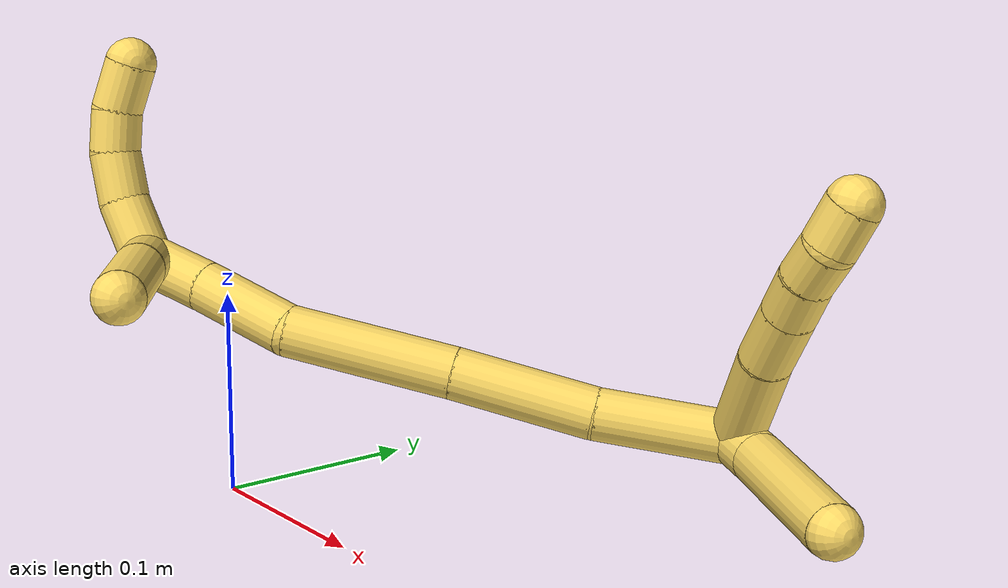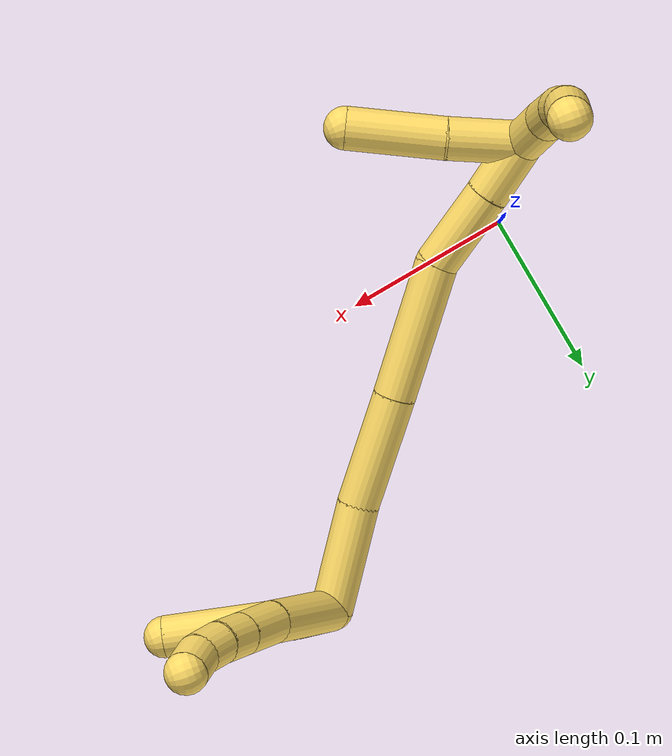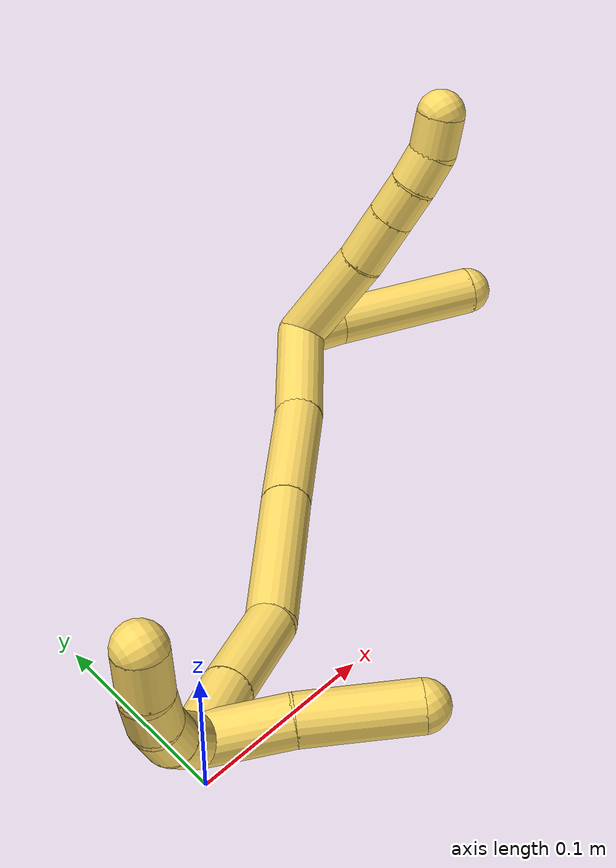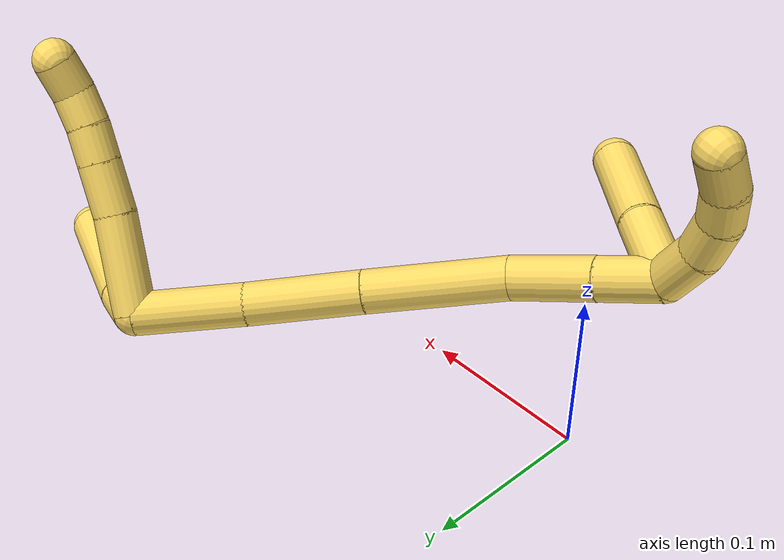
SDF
<sdf version="1.7">
 <world name="default">
  <model name="5">
   <static>0</static>
   <link name="5">
    <collision name="collision-cylinder-e_1_2_8">
     <pose>-0.012762 -0.018462 0.017936 0.799845 -0.4603 -0.197435</pose>
     <geometry><cylinder><radius>0.0125</radius><length>0.05746</length></cylinder></geometry>
     <surface>
      <friction><ode><mu>1.16</mu><mu2>1.16</mu2><slip1>0</slip1><slip2>0</slip2></ode></friction>
      <contact><ode><kp>1e+06</kp><kd>1</kd><max_vel>0</max_vel><min_depth>0.001</min_depth></ode></contact>
     </surface>
    </collision>
    <visual name="visual-cylinder-e_1_2_8">
     <pose>-0.012762 -0.018462 0.017936 0.799845 -0.4603 -0.197435</pose>
     <geometry><cylinder><radius>0.0125</radius><length>0.05746</length></cylinder></geometry>
     <material><ambient>1 0.858824 0.4 1</ambient></material>
    </visual>
    <collision name="collision-cylinder-e_2_8_9">
     <pose>-0.033461 -0.04567 0.045439 0.74061 -0.549374 -0.217939</pose>
     <geometry><cylinder><radius>0.0125</radius><length>0.030399</length></cylinder></geometry>
     <surface>
      <friction><ode><mu>1.16</mu><mu2>1.16</mu2><slip1>0</slip1><slip2>0</slip2></ode></friction>
      <contact><ode><kp>1e+06</kp><kd>1</kd><max_vel>0</max_vel><min_depth>0.001</min_depth></ode></contact>
     </surface>
    </collision>
    <visual name="visual-cylinder-e_2_8_9">
     <pose>-0.033461 -0.04567 0.045439 0.74061 -0.549374 -0.217939</pose>
     <geometry><cylinder><radius>0.0125</radius><length>0.030399</length></cylinder></geometry>
     <material><ambient>1 0.858824 0.4 1</ambient></material>
    </visual>
    <collision name="collision-cylinder-e_3_9_10">
     <pose>-0.046985 -0.060558 0.061731 0.740158 -0.550357 -0.218201</pose>
     <geometry><cylinder><radius>0.0125</radius><length>0.021369</length></cylinder></geometry>
     <surface>
      <friction><ode><mu>1.16</mu><mu2>1.16</mu2><slip1>0</slip1><slip2>0</slip2></ode></friction>
      <contact><ode><kp>1e+06</kp><kd>1</kd><max_vel>0</max_vel><min_depth>0.001</min_depth></ode></contact>
     </surface>
    </collision>
    <visual name="visual-cylinder-e_3_9_10">
     <pose>-0.046985 -0.060558 0.061731 0.740158 -0.550357 -0.218201</pose>
     <geometry><cylinder><radius>0.0125</radius><length>0.021369</length></cylinder></geometry>
     <material><ambient>1 0.858824 0.4 1</ambient></material>
    </visual>
    <collision name="collision-cylinder-e_4_10_11">
     <pose>-0.058294 -0.071496 0.075112 0.624315 -0.608872 -0.202101</pose>
     <geometry><cylinder><radius>0.0125</radius><length>0.020006</length></cylinder></geometry>
     <surface>
      <friction><ode><mu>1.16</mu><mu2>1.16</mu2><slip1>0</slip1><slip2>0</slip2></ode></friction>
      <contact><ode><kp>1e+06</kp><kd>1</kd><max_vel>0</max_vel><min_depth>0.001</min_depth></ode></contact>
     </surface>
    </collision>
    <visual name="visual-cylinder-e_4_10_11">
     <pose>-0.058294 -0.071496 0.075112 0.624315 -0.608872 -0.202101</pose>
     <geometry><cylinder><radius>0.0125</radius><length>0.020006</length></cylinder></geometry>
     <material><ambient>1 0.858824 0.4 1</ambient></material>
    </visual>
    <collision name="collision-cylinder-e_5_11_6">
     <pose>-0.072266 -0.080568 0.086402 0.745249 -0.91838 -0.381832</pose>
     <geometry><cylinder><radius>0.0125</radius><length>0.020767</length></cylinder></geometry>
     <surface>
      <friction><ode><mu>1.16</mu><mu2>1.16</mu2><slip1>0</slip1><slip2>0</slip2></ode></friction>
      <contact><ode><kp>1e+06</kp><kd>1</kd><max_vel>0</max_vel><min_depth>0.001</min_depth></ode></contact>
     </surface>
    </collision>
    <visual name="visual-cylinder-e_5_11_6">
     <pose>-0.072266 -0.080568 0.086402 0.745249 -0.91838 -0.381832</pose>
     <geometry><cylinder><radius>0.0125</radius><length>0.020767</length></cylinder></geometry>
     <material><ambient>1 0.858824 0.4 1</ambient></material>
    </visual>
    <collision name="collision-cylinder-e_1_2_12">
     <pose>0.002546 0.000622 0.010959 -0.056657 0.227947 -0.006487</pose>
     <geometry><cylinder><radius>0.0125</radius><length>0.022535</length></cylinder></geometry>
     <surface>
      <friction><ode><mu>1.16</mu><mu2>1.16</mu2><slip1>0</slip1><slip2>0</slip2></ode></friction>
      <contact><ode><kp>1e+06</kp><kd>1</kd><max_vel>0</max_vel><min_depth>0.001</min_depth></ode></contact>
     </surface>
    </collision>
    <visual name="visual-cylinder-e_1_2_12">
     <pose>0.002546 0.000622 0.010959 -0.056657 0.227947 -0.006487</pose>
     <geometry><cylinder><radius>0.0125</radius><length>0.022535</length></cylinder></geometry>
     <material><ambient>1 0.858824 0.4 1</ambient></material>
    </visual>
    <collision name="collision-cylinder-e_2_12_5">
     <pose>0.014998 -0.000633 0.059314 0.050117 0.258611 0.006518</pose>
     <geometry><cylinder><radius>0.0125</radius><length>0.077465</length></cylinder></geometry>
     <surface>
      <friction><ode><mu>1.16</mu><mu2>1.16</mu2><slip1>0</slip1><slip2>0</slip2></ode></friction>
      <contact><ode><kp>1e+06</kp><kd>1</kd><max_vel>0</max_vel><min_depth>0.001</min_depth></ode></contact>
     </surface>
    </collision>
    <visual name="visual-cylinder-e_2_12_5">
     <pose>0.014998 -0.000633 0.059314 0.050117 0.258611 0.006518</pose>
     <geometry><cylinder><radius>0.0125</radius><length>0.077465</length></cylinder></geometry>
     <material><ambient>1 0.858824 0.4 1</ambient></material>
    </visual>
    <collision name="collision-cylinder-e_1_2_13">
     <pose>0.014317 -0.023039 -0.017848 2.22991 0.456625 0.885165</pose>
     <geometry><cylinder><radius>0.0125</radius><length>0.064939</length></cylinder></geometry>
     <surface>
      <friction><ode><mu>1.16</mu><mu2>1.16</mu2><slip1>0</slip1><slip2>0</slip2></ode></friction>
      <contact><ode><kp>1e+06</kp><kd>1</kd><max_vel>0</max_vel><min_depth>0.001</min_depth></ode></contact>
     </surface>
    </collision>
    <visual name="visual-cylinder-e_1_2_13">
     <pose>0.014317 -0.023039 -0.017848 2.22991 0.456625 0.885165</pose>
     <geometry><cylinder><radius>0.0125</radius><length>0.064939</length></cylinder></geometry>
     <material><ambient>1 0.858824 0.4 1</ambient></material>
    </visual>
    <collision name="collision-cylinder-e_2_13_14">
     <pose>0.04006 -0.070894 -0.055868 2.25334 0.343167 0.698497</pose>
     <geometry><cylinder><radius>0.0125</radius><length>0.067923</length></cylinder></geometry>
     <surface>
      <friction><ode><mu>1.16</mu><mu2>1.16</mu2><slip1>0</slip1><slip2>0</slip2></ode></friction>
      <contact><ode><kp>1e+06</kp><kd>1</kd><max_vel>0</max_vel><min_depth>0.001</min_depth></ode></contact>
     </surface>
    </collision>
    <visual name="visual-cylinder-e_2_13_14">
     <pose>0.04006 -0.070894 -0.055868 2.25334 0.343167 0.698497</pose>
     <geometry><cylinder><radius>0.0125</radius><length>0.067923</length></cylinder></geometry>
     <material><ambient>1 0.858824 0.4 1</ambient></material>
    </visual>
    <collision name="collision-cylinder-e_3_14_15">
     <pose>0.066308 -0.125134 -0.100033 2.25487 0.372183 0.754879</pose>
     <geometry><cylinder><radius>0.0125</radius><length>0.081512</length></cylinder></geometry>
     <surface>
      <friction><ode><mu>1.16</mu><mu2>1.16</mu2><slip1>0</slip1><slip2>0</slip2></ode></friction>
      <contact><ode><kp>1e+06</kp><kd>1</kd><max_vel>0</max_vel><min_depth>0.001</min_depth></ode></contact>
     </surface>
    </collision>
    <visual name="visual-cylinder-e_3_14_15">
     <pose>0.066308 -0.125134 -0.100033 2.25487 0.372183 0.754879</pose>
     <geometry><cylinder><radius>0.0125</radius><length>0.081512</length></cylinder></geometry>
     <material><ambient>1 0.858824 0.4 1</ambient></material>
    </visual>
    <collision name="collision-cylinder-e_4_15_16">
     <pose>0.08362 -0.170233 -0.143177 2.45568 0.100324 0.279371</pose>
     <geometry><cylinder><radius>0.0125</radius><length>0.049748</length></cylinder></geometry>
     <surface>
      <friction><ode><mu>1.16</mu><mu2>1.16</mu2><slip1>0</slip1><slip2>0</slip2></ode></friction>
      <contact><ode><kp>1e+06</kp><kd>1</kd><max_vel>0</max_vel><min_depth>0.001</min_depth></ode></contact>
     </surface>
    </collision>
    <visual name="visual-cylinder-e_4_15_16">
     <pose>0.08362 -0.170233 -0.143177 2.45568 0.100324 0.279371</pose>
     <geometry><cylinder><radius>0.0125</radius><length>0.049748</length></cylinder></geometry>
     <material><ambient>1 0.858824 0.4 1</ambient></material>
    </visual>
    <collision name="collision-cylinder-e_5_16_1">
     <pose>0.088621 -0.197321 -0.175941 2.44386 0.140343 0.381757</pose>
     <geometry><cylinder><radius>0.0125</radius><length>0.035878</length></cylinder></geometry>
     <surface>
      <friction><ode><mu>1.16</mu><mu2>1.16</mu2><slip1>0</slip1><slip2>0</slip2></ode></friction>
      <contact><ode><kp>1e+06</kp><kd>1</kd><max_vel>0</max_vel><min_depth>0.001</min_depth></ode></contact>
     </surface>
    </collision>
    <visual name="visual-cylinder-e_5_16_1">
     <pose>0.088621 -0.197321 -0.175941 2.44386 0.140343 0.381757</pose>
     <geometry><cylinder><radius>0.0125</radius><length>0.035878</length></cylinder></geometry>
     <material><ambient>1 0.858824 0.4 1</ambient></material>
    </visual>
    <collision name="collision-cylinder-e_1_1_17">
     <pose>0.09655 -0.21534 -0.169695 0.321221 0.253381 0.041264</pose>
     <geometry><cylinder><radius>0.0125</radius><length>0.043236</length></cylinder></geometry>
     <surface>
      <friction><ode><mu>1.16</mu><mu2>1.16</mu2><slip1>0</slip1><slip2>0</slip2></ode></friction>
      <contact><ode><kp>1e+06</kp><kd>1</kd><max_vel>0</max_vel><min_depth>0.001</min_depth></ode></contact>
     </surface>
    </collision>
    <visual name="visual-cylinder-e_1_1_17">
     <pose>0.09655 -0.21534 -0.169695 0.321221 0.253381 0.041264</pose>
     <geometry><cylinder><radius>0.0125</radius><length>0.043236</length></cylinder></geometry>
     <material><ambient>1 0.858824 0.4 1</ambient></material>
    </visual>
    <collision name="collision-cylinder-e_2_17_4">
     <pose>0.112011 -0.229794 -0.124478 0.300062 0.361674 0.055263</pose>
     <geometry><cylinder><radius>0.0125</radius><length>0.056764</length></cylinder></geometry>
     <surface>
      <friction><ode><mu>1.16</mu><mu2>1.16</mu2><slip1>0</slip1><slip2>0</slip2></ode></friction>
      <contact><ode><kp>1e+06</kp><kd>1</kd><max_vel>0</max_vel><min_depth>0.001</min_depth></ode></contact>
     </surface>
    </collision>
    <visual name="visual-cylinder-e_2_17_4">
     <pose>0.112011 -0.229794 -0.124478 0.300062 0.361674 0.055263</pose>
     <geometry><cylinder><radius>0.0125</radius><length>0.056764</length></cylinder></geometry>
     <material><ambient>1 0.858824 0.4 1</ambient></material>
    </visual>
    <collision name="collision-cylinder-e_1_1_18">
     <pose>0.083505 -0.2202 -0.196098 2.08948 -0.523737 -0.864926</pose>
     <geometry><cylinder><radius>0.0125</radius><length>0.030495</length></cylinder></geometry>
     <surface>
      <friction><ode><mu>1.16</mu><mu2>1.16</mu2><slip1>0</slip1><slip2>0</slip2></ode></friction>
      <contact><ode><kp>1e+06</kp><kd>1</kd><max_vel>0</max_vel><min_depth>0.001</min_depth></ode></contact>
     </surface>
    </collision>
    <visual name="visual-cylinder-e_1_1_18">
     <pose>0.083505 -0.2202 -0.196098 2.08948 -0.523737 -0.864926</pose>
     <geometry><cylinder><radius>0.0125</radius><length>0.030495</length></cylinder></geometry>
     <material><ambient>1 0.858824 0.4 1</ambient></material>
    </visual>
    <collision name="collision-cylinder-e_2_18_19">
     <pose>0.067836 -0.240698 -0.205292 1.85608 -0.707149 -0.915867</pose>
     <geometry><cylinder><radius>0.0125</radius><length>0.024759</length></cylinder></geometry>
     <surface>
      <friction><ode><mu>1.16</mu><mu2>1.16</mu2><slip1>0</slip1><slip2>0</slip2></ode></friction>
      <contact><ode><kp>1e+06</kp><kd>1</kd><max_vel>0</max_vel><min_depth>0.001</min_depth></ode></contact>
     </surface>
    </collision>
    <visual name="visual-cylinder-e_2_18_19">
     <pose>0.067836 -0.240698 -0.205292 1.85608 -0.707149 -0.915867</pose>
     <geometry><cylinder><radius>0.0125</radius><length>0.024759</length></cylinder></geometry>
     <material><ambient>1 0.858824 0.4 1</ambient></material>
    </visual>
    <collision name="collision-cylinder-e_3_19_20">
     <pose>0.051622 -0.2561 -0.207924 1.56818 -0.908557 -0.906494</pose>
     <geometry><cylinder><radius>0.0125</radius><length>0.020724</length></cylinder></geometry>
     <surface>
      <friction><ode><mu>1.16</mu><mu2>1.16</mu2><slip1>0</slip1><slip2>0</slip2></ode></friction>
      <contact><ode><kp>1e+06</kp><kd>1</kd><max_vel>0</max_vel><min_depth>0.001</min_depth></ode></contact>
     </surface>
    </collision>
    <visual name="visual-cylinder-e_3_19_20">
     <pose>0.051622 -0.2561 -0.207924 1.56818 -0.908557 -0.906494</pose>
     <geometry><cylinder><radius>0.0125</radius><length>0.020724</length></cylinder></geometry>
     <material><ambient>1 0.858824 0.4 1</ambient></material>
    </visual>
    <collision name="collision-cylinder-e_4_20_3">
     <pose>0.032926 -0.267837 -0.205738 1.18669 -1.06809 -0.758979</pose>
     <geometry><cylinder><radius>0.0125</radius><length>0.024022</length></cylinder></geometry>
     <surface>
      <friction><ode><mu>1.16</mu><mu2>1.16</mu2><slip1>0</slip1><slip2>0</slip2></ode></friction>
      <contact><ode><kp>1e+06</kp><kd>1</kd><max_vel>0</max_vel><min_depth>0.001</min_depth></ode></contact>
     </surface>
    </collision>
    <visual name="visual-cylinder-e_4_20_3">
     <pose>0.032926 -0.267837 -0.205738 1.18669 -1.06809 -0.758979</pose>
     <geometry><cylinder><radius>0.0125</radius><length>0.024022</length></cylinder></geometry>
     <material><ambient>1 0.858824 0.4 1</ambient></material>
    </visual>
    <collision name="collision-sphere-3">
     <pose>0.022401 -0.273202 -0.20357 0 -0 0</pose>
     <geometry><sphere><radius>0.0125</radius></sphere></geometry>
     <surface>
      <friction><ode><mu>1.16</mu><mu2>1.16</mu2><slip1>0</slip1><slip2>0</slip2></ode></friction>
      <contact><ode><kp>1e+06</kp><kd>1</kd><max_vel>0</max_vel><min_depth>0.001</min_depth></ode></contact>
     </surface>
    </collision>
    <visual name="visual-sphere-3">
     <pose>0.022401 -0.273202 -0.20357 0 -0 0</pose>
     <geometry><sphere><radius>0.0125</radius></sphere></geometry>
     <material><ambient>1 0.858824 0.4 1</ambient></material>
    </visual>
    <collision name="collision-sphere-20">
     <pose>0.043451 -0.262471 -0.207907 0 -0 0</pose>
     <geometry><sphere><radius>0.0125</radius></sphere></geometry>
     <surface>
      <friction><ode><mu>1.16</mu><mu2>1.16</mu2><slip1>0</slip1><slip2>0</slip2></ode></friction>
      <contact><ode><kp>1e+06</kp><kd>1</kd><max_vel>0</max_vel><min_depth>0.001</min_depth></ode></contact>
     </surface>
    </collision>
    <visual name="visual-sphere-20">
     <pose>0.043451 -0.262471 -0.207907 0 -0 0</pose>
     <geometry><sphere><radius>0.0125</radius></sphere></geometry>
     <material><ambient>1 0.858824 0.4 1</ambient></material>
    </visual>
    <collision name="collision-sphere-19">
     <pose>0.059794 -0.249729 -0.20794 0 -0 0</pose>
     <geometry><sphere><radius>0.0125</radius></sphere></geometry>
     <surface>
      <friction><ode><mu>1.16</mu><mu2>1.16</mu2><slip1>0</slip1><slip2>0</slip2></ode></friction>
      <contact><ode><kp>1e+06</kp><kd>1</kd><max_vel>0</max_vel><min_depth>0.001</min_depth></ode></contact>
     </surface>
    </collision>
    <visual name="visual-sphere-19">
     <pose>0.059794 -0.249729 -0.20794 0 -0 0</pose>
     <geometry><sphere><radius>0.0125</radius></sphere></geometry>
     <material><ambient>1 0.858824 0.4 1</ambient></material>
    </visual>
    <collision name="collision-sphere-6">
     <pose>-0.080517 -0.084842 0.091035 0 -0 0</pose>
     <geometry><sphere><radius>0.0125</radius></sphere></geometry>
     <surface>
      <friction><ode><mu>1.16</mu><mu2>1.16</mu2><slip1>0</slip1><slip2>0</slip2></ode></friction>
      <contact><ode><kp>1e+06</kp><kd>1</kd><max_vel>0</max_vel><min_depth>0.001</min_depth></ode></contact>
     </surface>
    </collision>
    <visual name="visual-sphere-6">
     <pose>-0.080517 -0.084842 0.091035 0 -0 0</pose>
     <geometry><sphere><radius>0.0125</radius></sphere></geometry>
     <material><ambient>1 0.858824 0.4 1</ambient></material>
    </visual>
    <collision name="collision-sphere-11">
     <pose>-0.064015 -0.076293 0.08177 0 -0 0</pose>
     <geometry><sphere><radius>0.0125</radius></sphere></geometry>
     <surface>
      <friction><ode><mu>1.16</mu><mu2>1.16</mu2><slip1>0</slip1><slip2>0</slip2></ode></friction>
      <contact><ode><kp>1e+06</kp><kd>1</kd><max_vel>0</max_vel><min_depth>0.001</min_depth></ode></contact>
     </surface>
    </collision>
    <visual name="visual-sphere-11">
     <pose>-0.064015 -0.076293 0.08177 0 -0 0</pose>
     <geometry><sphere><radius>0.0125</radius></sphere></geometry>
     <material><ambient>1 0.858824 0.4 1</ambient></material>
    </visual>
    <collision name="collision-sphere-10">
     <pose>-0.052573 -0.0667 0.068455 0 -0 0</pose>
     <geometry><sphere><radius>0.0125</radius></sphere></geometry>
     <surface>
      <friction><ode><mu>1.16</mu><mu2>1.16</mu2><slip1>0</slip1><slip2>0</slip2></ode></friction>
      <contact><ode><kp>1e+06</kp><kd>1</kd><max_vel>0</max_vel><min_depth>0.001</min_depth></ode></contact>
     </surface>
    </collision>
    <visual name="visual-sphere-10">
     <pose>-0.052573 -0.0667 0.068455 0 -0 0</pose>
     <geometry><sphere><radius>0.0125</radius></sphere></geometry>
     <material><ambient>1 0.858824 0.4 1</ambient></material>
    </visual>
    <collision name="collision-sphere-9">
     <pose>-0.041397 -0.054417 0.055006 0 -0 0</pose>
     <geometry><sphere><radius>0.0125</radius></sphere></geometry>
     <surface>
      <friction><ode><mu>1.16</mu><mu2>1.16</mu2><slip1>0</slip1><slip2>0</slip2></ode></friction>
      <contact><ode><kp>1e+06</kp><kd>1</kd><max_vel>0</max_vel><min_depth>0.001</min_depth></ode></contact>
     </surface>
    </collision>
    <visual name="visual-sphere-9">
     <pose>-0.041397 -0.054417 0.055006 0 -0 0</pose>
     <geometry><sphere><radius>0.0125</radius></sphere></geometry>
     <material><ambient>1 0.858824 0.4 1</ambient></material>
    </visual>
    <collision name="collision-sphere-2">
     <geometry><sphere><radius>0.0125</radius></sphere></geometry>
     <surface>
      <friction><ode><mu>1.16</mu><mu2>1.16</mu2><slip1>0</slip1><slip2>0</slip2></ode></friction>
      <contact><ode><kp>1e+06</kp><kd>1</kd><max_vel>0</max_vel><min_depth>0.001</min_depth></ode></contact>
     </surface>
    </collision>
    <visual name="visual-sphere-2">
     <geometry><sphere><radius>0.0125</radius></sphere></geometry>
     <material><ambient>1 0.858824 0.4 1</ambient></material>
    </visual>
    <collision name="collision-sphere-8">
     <pose>-0.025525 -0.036924 0.035872 0 -0 0</pose>
     <geometry><sphere><radius>0.0125</radius></sphere></geometry>
     <surface>
      <friction><ode><mu>1.16</mu><mu2>1.16</mu2><slip1>0</slip1><slip2>0</slip2></ode></friction>
      <contact><ode><kp>1e+06</kp><kd>1</kd><max_vel>0</max_vel><min_depth>0.001</min_depth></ode></contact>
     </surface>
    </collision>
    <visual name="visual-sphere-8">
     <pose>-0.025525 -0.036924 0.035872 0 -0 0</pose>
     <geometry><sphere><radius>0.0125</radius></sphere></geometry>
     <material><ambient>1 0.858824 0.4 1</ambient></material>
    </visual>
    <collision name="collision-sphere-12">
     <pose>0.005092 0.001243 0.021917 0 -0 0</pose>
     <geometry><sphere><radius>0.0125</radius></sphere></geometry>
     <surface>
      <friction><ode><mu>1.16</mu><mu2>1.16</mu2><slip1>0</slip1><slip2>0</slip2></ode></friction>
      <contact><ode><kp>1e+06</kp><kd>1</kd><max_vel>0</max_vel><min_depth>0.001</min_depth></ode></contact>
     </surface>
    </collision>
    <visual name="visual-sphere-12">
     <pose>0.005092 0.001243 0.021917 0 -0 0</pose>
     <geometry><sphere><radius>0.0125</radius></sphere></geometry>
     <material><ambient>1 0.858824 0.4 1</ambient></material>
    </visual>
    <collision name="collision-sphere-5">
     <pose>0.024903 -0.002509 0.096712 0 -0 0</pose>
     <geometry><sphere><radius>0.0125</radius></sphere></geometry>
     <surface>
      <friction><ode><mu>1.16</mu><mu2>1.16</mu2><slip1>0</slip1><slip2>0</slip2></ode></friction>
      <contact><ode><kp>1e+06</kp><kd>1</kd><max_vel>0</max_vel><min_depth>0.001</min_depth></ode></contact>
     </surface>
    </collision>
    <visual name="visual-sphere-5">
     <pose>0.024903 -0.002509 0.096712 0 -0 0</pose>
     <geometry><sphere><radius>0.0125</radius></sphere></geometry>
     <material><ambient>1 0.858824 0.4 1</ambient></material>
    </visual>
    <collision name="collision-sphere-13">
     <pose>0.028633 -0.046077 -0.035695 0 -0 0</pose>
     <geometry><sphere><radius>0.0125</radius></sphere></geometry>
     <surface>
      <friction><ode><mu>1.16</mu><mu2>1.16</mu2><slip1>0</slip1><slip2>0</slip2></ode></friction>
      <contact><ode><kp>1e+06</kp><kd>1</kd><max_vel>0</max_vel><min_depth>0.001</min_depth></ode></contact>
     </surface>
    </collision>
    <visual name="visual-sphere-13">
     <pose>0.028633 -0.046077 -0.035695 0 -0 0</pose>
     <geometry><sphere><radius>0.0125</radius></sphere></geometry>
     <material><ambient>1 0.858824 0.4 1</ambient></material>
    </visual>
    <collision name="collision-sphere-14">
     <pose>0.051487 -0.09571 -0.07604 0 -0 0</pose>
     <geometry><sphere><radius>0.0125</radius></sphere></geometry>
     <surface>
      <friction><ode><mu>1.16</mu><mu2>1.16</mu2><slip1>0</slip1><slip2>0</slip2></ode></friction>
      <contact><ode><kp>1e+06</kp><kd>1</kd><max_vel>0</max_vel><min_depth>0.001</min_depth></ode></contact>
     </surface>
    </collision>
    <visual name="visual-sphere-14">
     <pose>0.051487 -0.09571 -0.07604 0 -0 0</pose>
     <geometry><sphere><radius>0.0125</radius></sphere></geometry>
     <material><ambient>1 0.858824 0.4 1</ambient></material>
    </visual>
    <collision name="collision-sphere-15">
     <pose>0.081129 -0.154558 -0.124026 0 -0 0</pose>
     <geometry><sphere><radius>0.0125</radius></sphere></geometry>
     <surface>
      <friction><ode><mu>1.16</mu><mu2>1.16</mu2><slip1>0</slip1><slip2>0</slip2></ode></friction>
      <contact><ode><kp>1e+06</kp><kd>1</kd><max_vel>0</max_vel><min_depth>0.001</min_depth></ode></contact>
     </surface>
    </collision>
    <visual name="visual-sphere-15">
     <pose>0.081129 -0.154558 -0.124026 0 -0 0</pose>
     <geometry><sphere><radius>0.0125</radius></sphere></geometry>
     <material><ambient>1 0.858824 0.4 1</ambient></material>
    </visual>
    <collision name="collision-sphere-16">
     <pose>0.086112 -0.185909 -0.162329 0 -0 0</pose>
     <geometry><sphere><radius>0.0125</radius></sphere></geometry>
     <surface>
      <friction><ode><mu>1.16</mu><mu2>1.16</mu2><slip1>0</slip1><slip2>0</slip2></ode></friction>
      <contact><ode><kp>1e+06</kp><kd>1</kd><max_vel>0</max_vel><min_depth>0.001</min_depth></ode></contact>
     </surface>
    </collision>
    <visual name="visual-sphere-16">
     <pose>0.086112 -0.185909 -0.162329 0 -0 0</pose>
     <geometry><sphere><radius>0.0125</radius></sphere></geometry>
     <material><ambient>1 0.858824 0.4 1</ambient></material>
    </visual>
    <collision name="collision-sphere-1">
     <pose>0.09113 -0.208733 -0.189552 0 -0 0</pose>
     <geometry><sphere><radius>0.0125</radius></sphere></geometry>
     <surface>
      <friction><ode><mu>1.16</mu><mu2>1.16</mu2><slip1>0</slip1><slip2>0</slip2></ode></friction>
      <contact><ode><kp>1e+06</kp><kd>1</kd><max_vel>0</max_vel><min_depth>0.001</min_depth></ode></contact>
     </surface>
    </collision>
    <visual name="visual-sphere-1">
     <pose>0.09113 -0.208733 -0.189552 0 -0 0</pose>
     <geometry><sphere><radius>0.0125</radius></sphere></geometry>
     <material><ambient>1 0.858824 0.4 1</ambient></material>
    </visual>
    <collision name="collision-sphere-18">
     <pose>0.075879 -0.231667 -0.202643 0 -0 0</pose>
     <geometry><sphere><radius>0.0125</radius></sphere></geometry>
     <surface>
      <friction><ode><mu>1.16</mu><mu2>1.16</mu2><slip1>0</slip1><slip2>0</slip2></ode></friction>
      <contact><ode><kp>1e+06</kp><kd>1</kd><max_vel>0</max_vel><min_depth>0.001</min_depth></ode></contact>
     </surface>
    </collision>
    <visual name="visual-sphere-18">
     <pose>0.075879 -0.231667 -0.202643 0 -0 0</pose>
     <geometry><sphere><radius>0.0125</radius></sphere></geometry>
     <material><ambient>1 0.858824 0.4 1</ambient></material>
    </visual>
    <collision name="collision-sphere-17">
     <pose>0.101969 -0.221948 -0.149837 0 -0 0</pose>
     <geometry><sphere><radius>0.0125</radius></sphere></geometry>
     <surface>
      <friction><ode><mu>1.16</mu><mu2>1.16</mu2><slip1>0</slip1><slip2>0</slip2></ode></friction>
      <contact><ode><kp>1e+06</kp><kd>1</kd><max_vel>0</max_vel><min_depth>0.001</min_depth></ode></contact>
     </surface>
    </collision>
    <visual name="visual-sphere-17">
     <pose>0.101969 -0.221948 -0.149837 0 -0 0</pose>
     <geometry><sphere><radius>0.0125</radius></sphere></geometry>
     <material><ambient>1 0.858824 0.4 1</ambient></material>
    </visual>
    <collision name="collision-sphere-4">
     <pose>0.122054 -0.237641 -0.099118 0 -0 0</pose>
     <geometry><sphere><radius>0.0125</radius></sphere></geometry>
     <surface>
      <friction><ode><mu>1.16</mu><mu2>1.16</mu2><slip1>0</slip1><slip2>0</slip2></ode></friction>
      <contact><ode><kp>1e+06</kp><kd>1</kd><max_vel>0</max_vel><min_depth>0.001</min_depth></ode></contact>
     </surface>
    </collision>
    <visual name="visual-sphere-4">
     <pose>0.122054 -0.237641 -0.099118 0 -0 0</pose>
     <geometry><sphere><radius>0.0125</radius></sphere></geometry>
     <material><ambient>1 0.858824 0.4 1</ambient></material>
    </visual>
    <inertial>
     <pose>0.038416 -0.114282 -0.065853 0 -0 0</pose>
     <mass>0.75</mass>
     <inertia><ixx>0.00024</ixx><ixy>0</ixy><ixz>0</ixz><iyy>8.7e-05</iyy><iyz>0</iyz><izz>8.1e-05</izz></inertia>
    </inertial>
   </link>
   <pose>0.201749 0.147648 0.050679 -1.45771 0.788766 -1.65905</pose>
  </model>
 </world>
</sdf>
